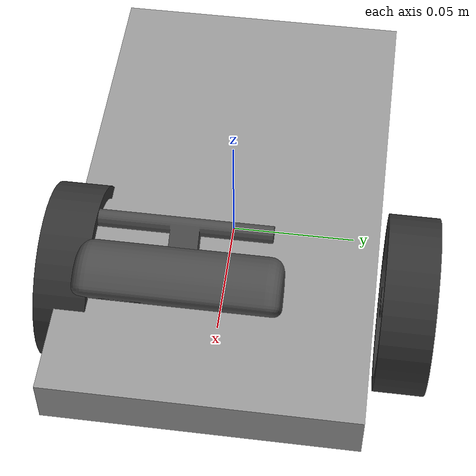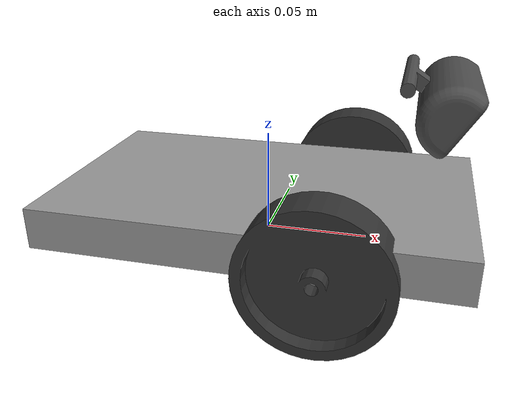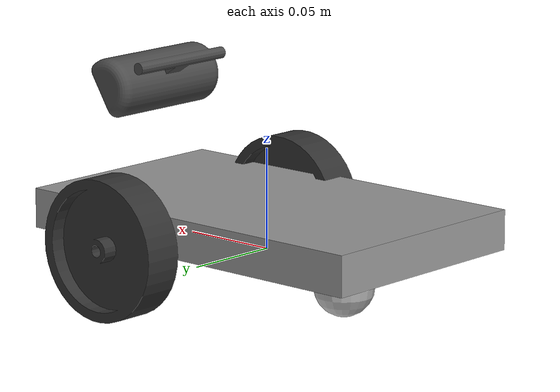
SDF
<?xml version="1.0" encoding="utf-8"?>
<sdf version='1.6'>
  <model name='argus'>
    <link name='base_link'>
      <pose frame=''>0 0 0 0 -0 0</pose>
      <inertial>
        <pose frame=''>0 0 0.015 0 -0 0</pose>
        <mass>0.606057</mass>
        <inertia>
          <ixx>0.0006</ixx>
          <ixy>0</ixy>
          <ixz>0</ixz>
          <iyy>0.0008</iyy>
          <iyz>0</iyz>
          <izz>0.0008</izz>
        </inertia>
      </inertial>

      <collision name='base_link_collision'>
        <pose frame=''>0 0 0.015 0 -0 0</pose>
        <geometry>
          <box>
            <size>0.2 0.12 0.03</size>
          </box>
        </geometry>
      </collision>

      <visual name='base_link_visual'>
        <pose frame=''>0 0 0.015 0 -0 0</pose>
        <geometry>
          <box>
            <size>0.2 0.12 0.02</size>
          </box>
        </geometry>
        <material>
          <script>
            <name>Gazebo/Grey</name>
            <uri>file://media/materials/scripts/gazebo.material</uri>
          </script>
          <shader type='vertex'>
            <normal_map>__default__</normal_map>
          </shader>
          <ambient>0.3 0.3 0.3 1</ambient>
          <diffuse>0.7 0.7 0.7 1</diffuse>
          <specular>0.01 0.01 0.01 1</specular>
          <emissive>0 0 0 1</emissive>
        </material>
      </visual>

      <collision name="caster_collision">
        <pose>-0.05 0 -0.01 0 0 0</pose>
        <geometry>
          <sphere>
            <radius>0.01500</radius>
          </sphere>
        </geometry>
        <surface>
          <friction>
            <ode>
              <mu>50</mu>
              <mu2>50</mu2>
              <fdir1>0 0 0</fdir1>
              <slip1>0.5</slip1>
              <slip2>0.5</slip2>
            </ode>
          </friction>
        </surface>
      </collision>

      <visual name='caster_visual'>
            <pose>-0.05 0 -0.01 0 0 0</pose>
            <geometry>
              <sphere>
                <radius>0.015</radius>
              </sphere>
            </geometry>
          </visual>
    </link>

    <link name='camera'>
      <pose frame=''>0.065 0.015 0.084 0 0.56 0</pose>
      <inertial>
        <pose frame=''>0.03266 -0.022303 -8.9e-05 0 -0 0</pose>
        <mass>0.015961</mass>
        <inertia>
          <ixx>1.593e-05</ixx>
          <ixy>-6.2483e-08</ixy>
          <ixz>-2.5912e-09</ixz>
          <iyy>3.5917e-06</iyy>
          <iyz>3.141e-10</iyz>
          <izz>1.5415e-05</izz>
        </inertia>
      </inertial>
      <collision name='camera_collision'>
        <pose frame=''>0 0 0 0 -0 0</pose>
        <geometry>
          <mesh>
            <scale>1 1 1</scale>
            <uri>model://argus/meshes/camera.STL</uri>
          </mesh>
        </geometry>
        <surface>
          <contact>
            <ode/>
          </contact>
          <friction>
            <ode/>
          </friction>
        </surface>
      </collision>
      <visual name='camera_visual'>
        <pose frame=''>0 0 0 0 -0 0</pose>
        <geometry>
          <mesh>
            <scale>1 1 1</scale>
            <uri>model://argus/meshes/camera.STL</uri>
          </mesh>
        </geometry>
        <material>
          <ambient>0.3 0.3 0.3 1</ambient>
          <diffuse>0.3 0.3 0.3 1</diffuse>
          <specular>0 0 0 0</specular>
          <emissive>0 0 0 1</emissive>
        </material>
      </visual>
      <gravity>1</gravity>
      <velocity_decay/>
      <self_collide>0</self_collide>
      <sensor name='camera' type='camera'>
        <update_rate>30</update_rate>
        <camera name='head'>
          <horizontal_fov>1.085595</horizontal_fov>
          <image>
            <width>640</width>
            <height>480</height>
            <format>B8G8R8</format>
          </image>
          <clip>
            <near>0.02</near>
            <far>300</far>
          </clip>
          <noise>
            <type>gaussian</type>
            <mean>0</mean>
            <stddev>0.007</stddev>
          </noise>
        </camera>
        <plugin name='camera_controller' filename='libgazebo_ros_camera.so'>
          <alwaysOn>true</alwaysOn>
          <updateRate>0.0</updateRate>
          <cameraName>camera</cameraName>
          <imageTopicName>image_raw</imageTopicName>
          <cameraInfoTopicName>camera_info</cameraInfoTopicName>
          <frameName>base_link</frameName>
          <hackBaseline>0.07</hackBaseline>
          <distortionK1>0.0</distortionK1>
          <distortionK2>0.0</distortionK2>
          <distortionK3>0.0</distortionK3>
          <distortionT1>0.0</distortionT1>
          <distortionT2>0.0</distortionT2>
        </plugin>
      </sensor>
    </link>
    <joint name='camera' type='revolute'>
      <child>camera</child>
      <parent>base_link</parent>
      <axis>
        <xyz>0 -1 0</xyz>
        <limit>
          <lower>0</lower>
          <upper>0</upper>
          <effort>0</effort>
          <velocity>0</velocity>
        </limit>
        <dynamics>
          <spring_reference>0</spring_reference>
          <spring_stiffness>0</spring_stiffness>
        </dynamics>
        <use_parent_model_frame>1</use_parent_model_frame>
      </axis>
      <physics>
        <ode>
          <limit>
            <cfm>0</cfm>
            <erp>0.2</erp>
          </limit>
        </ode>
      </physics>
    </joint>

    <link name='left_front_wheel'>
      <pose frame=''>0.035 0.0628 0.008 0 -0 0</pose>
      <inertial>
        <pose frame=''>0 0.01 0 0 -0 0</pose>
        <mass>0.035688</mass>
        <inertia>
          <ixx>1.4809e-05</ixx>
          <ixy>2.2984e-21</ixy>
          <ixz>-2.3483e-37</ixz>
          <iyy>2.8086e-05</iyy>
          <iyz>7.9877e-39</iyz>
          <izz>1.4809e-05</izz>
        </inertia>
      </inertial>
      <collision name='left_front_wheel_collision'>
        <pose frame=''>0 0 0 0 -0 0</pose>
        <geometry>
          <mesh>
            <scale>1 1 1</scale>
            <uri>model://argus/meshes/left_front_wheel.STL</uri>
          </mesh>
        </geometry>
      </collision>
      <visual name='left_front_wheel_visual'>
        <pose frame=''>0 0 0 0 -0 0</pose>
        <geometry>
          <mesh>
            <scale>1 1 1</scale>
            <uri>model://argus/meshes/left_front_wheel.STL</uri>
          </mesh>
        </geometry>
        <material>
          <ambient>0.2 0.2 0.2 1</ambient>
          <diffuse>0.2 0.2 0.2 1</diffuse>
          <specular>0 0 0 0</specular>
          <emissive>0 0 0 1</emissive>
        </material>
      </visual>
    </link>
    <joint name='left_front_wheel' type='revolute'>
      <child>left_front_wheel</child>
      <parent>base_link</parent>
      <axis>
        <xyz>0 1 0</xyz>
        <limit>
          <lower>-1e+16</lower>
          <upper>1e+16</upper>
        </limit>
        <dynamics>
          <spring_reference>0</spring_reference>
          <spring_stiffness>0</spring_stiffness>
        </dynamics>
        <use_parent_model_frame>1</use_parent_model_frame>
      </axis>
    </joint>
    <link name='right_front_wheel'>
      <pose frame=''>0.035 -0.068 0.008 0 -0 0</pose>
      <inertial>
        <pose frame=''>-0 -0.01 -0 0 -0 0</pose>
        <mass>0.035688</mass>
        <inertia>
          <ixx>1.4809e-05</ixx>
          <ixy>1.9973e-21</ixy>
          <ixz>-5.6561e-37</ixz>
          <iyy>2.8086e-05</iyy>
          <iyz>1.1192e-37</iyz>
          <izz>1.4809e-05</izz>
        </inertia>
      </inertial>
      <collision name='right_front_wheel_collision'>
        <pose frame=''>0 0 0 0 -0 0</pose>
        <geometry>
          <mesh>
            <scale>1 1 1</scale>
            <uri>model://argus/meshes/right_front_wheel.STL</uri>
          </mesh>
        </geometry>
      </collision>
      <visual name='right_front_wheel_visual'>
        <pose frame=''>0 0 0 0 -0 0</pose>
        <geometry>
          <mesh>
            <scale>1 1 1</scale>
            <uri>model://argus/meshes/right_front_wheel.STL</uri>
          </mesh>
        </geometry>
        <material>
          <ambient>0.2 0.2 0.2 1</ambient>
          <diffuse>0.2 0.2 0.2 1</diffuse>
          <specular>0 0 0 0</specular>
          <emissive>0 0 0 1</emissive>
        </material>
      </visual>
    </link>
    <joint name='right_front_wheel' type='revolute'>
      <child>right_front_wheel</child>
      <parent>base_link</parent>
      <axis>
        <xyz>0 1 0</xyz>
        <limit>
          <lower>-1e+16</lower>
          <upper>1e+16</upper>
        </limit>
        <dynamics>
          <spring_reference>0</spring_reference>
          <spring_stiffness>0</spring_stiffness>
        </dynamics>
        <use_parent_model_frame>1</use_parent_model_frame>
      </axis>
    </joint>
    <static>0</static>
    <plugin name="differential_drive_controller" filename="libgazebo_ros_diff_drive.so">
      <updateRate>100</updateRate>
      <leftJoint>left_front_wheel</leftJoint>
      <rightJoint>right_front_wheel</rightJoint>
      <wheelSeparation>0.129</wheelSeparation>
      <wheelDiameter>0.07</wheelDiameter>
      <wheelAcceleration>0.5</wheelAcceleration>
      <wheelTorque>20</wheelTorque>
      <commandTopic>control/cmd_vel</commandTopic>
      <odometryTopic>odom</odometryTopic>
      <odometryFrame>odom</odometryFrame>
      <robotBaseFrame>base_link</robotBaseFrame>
      <odometrySource>1</odometrySource>
      <publishWheelTF>false</publishWheelTF>
      <publishOdom>true</publishOdom>
      <publishWheelJointState>true</publishWheelJointState>
      <legacyMode>false</legacyMode>
    </plugin>
  </model>
</sdf>
